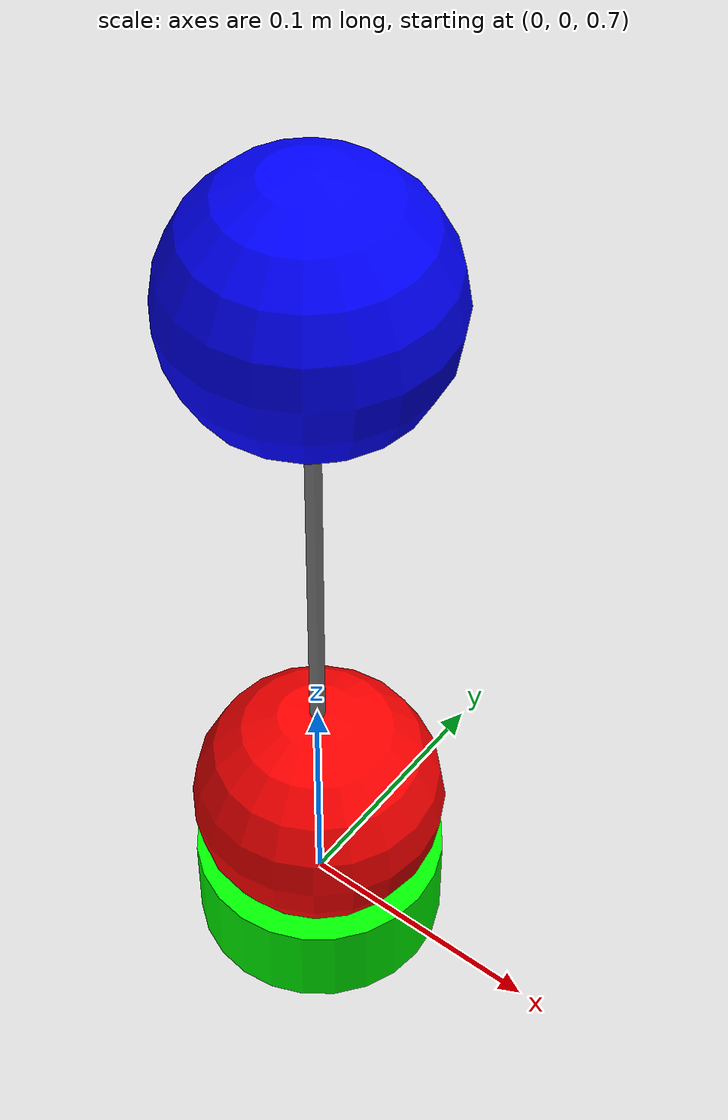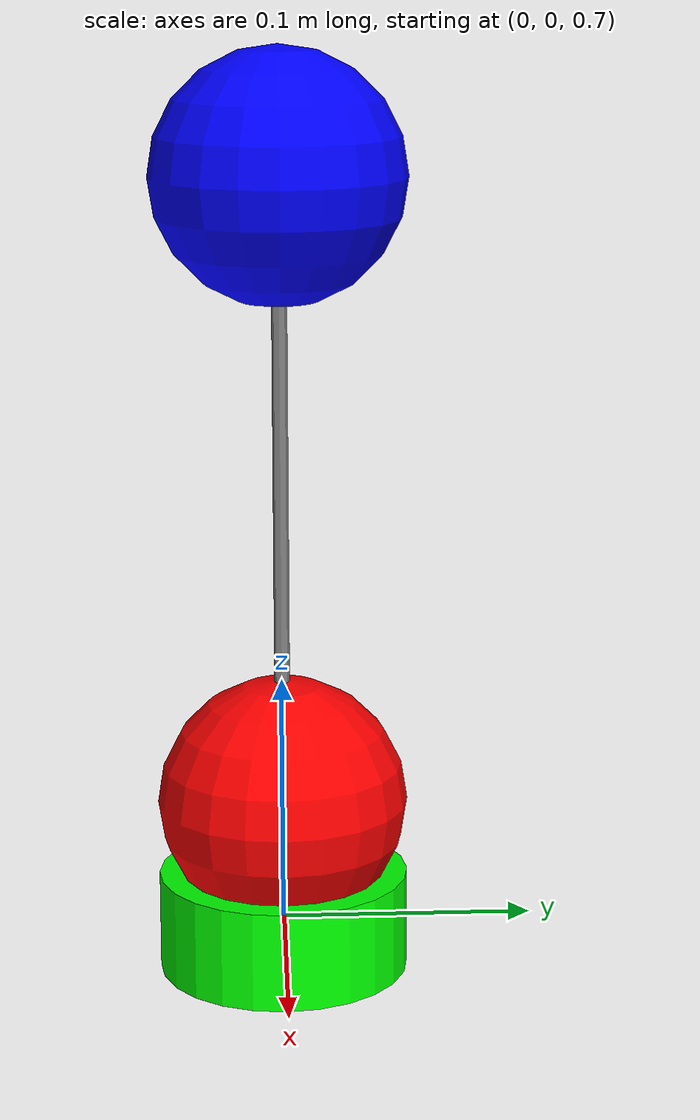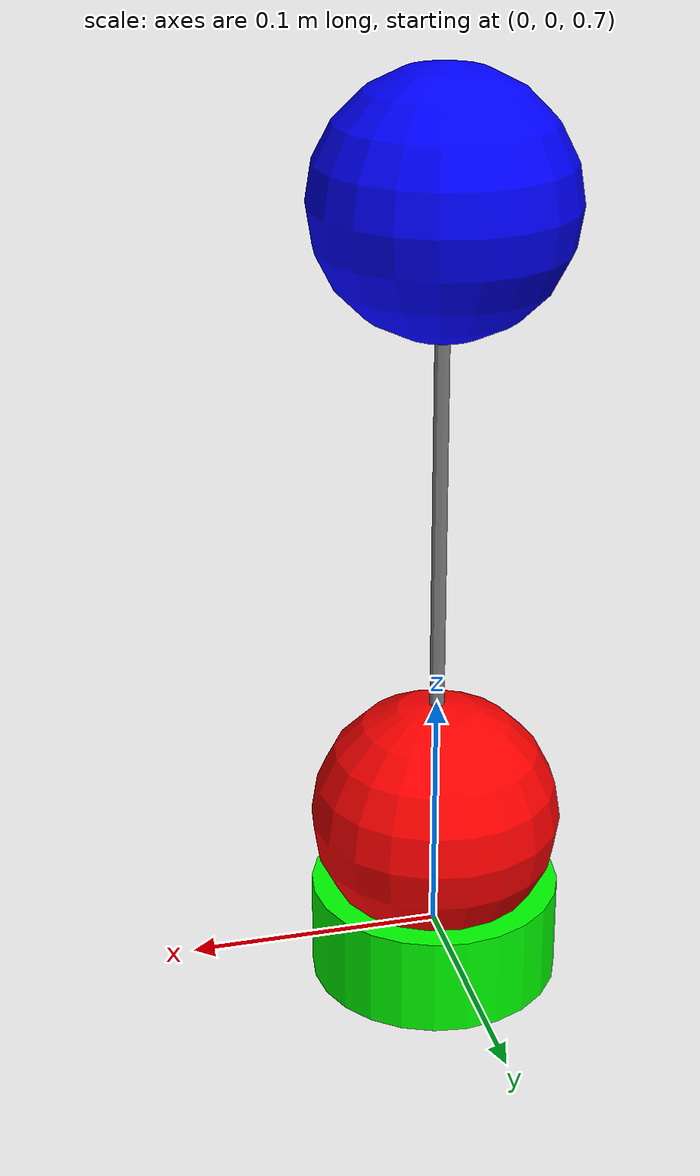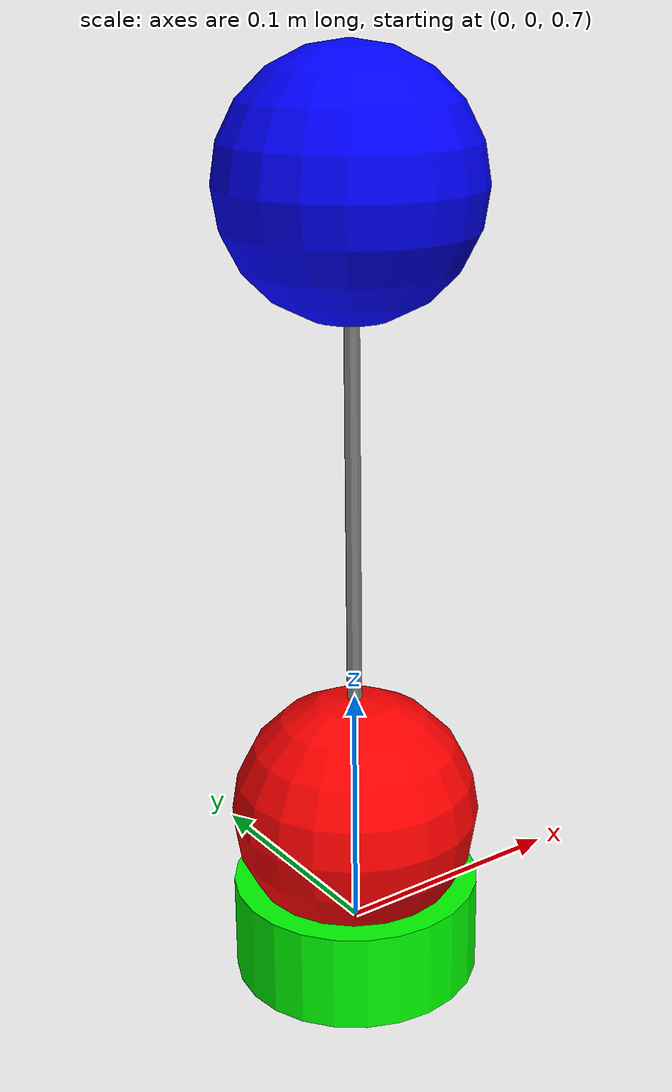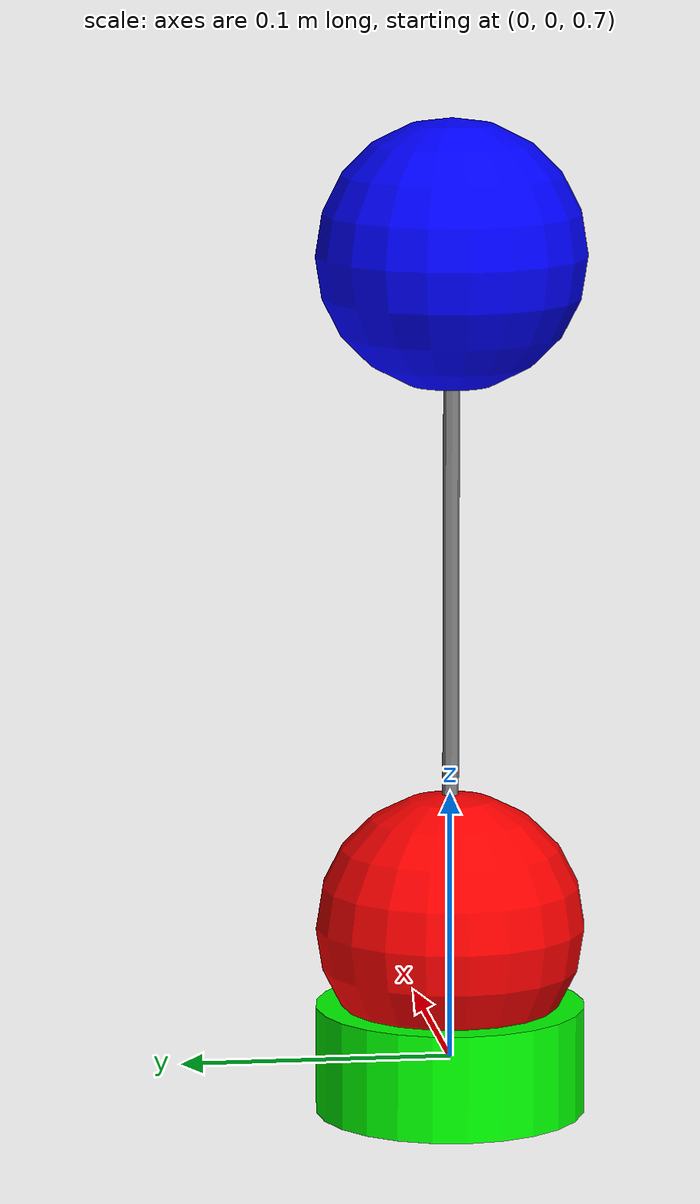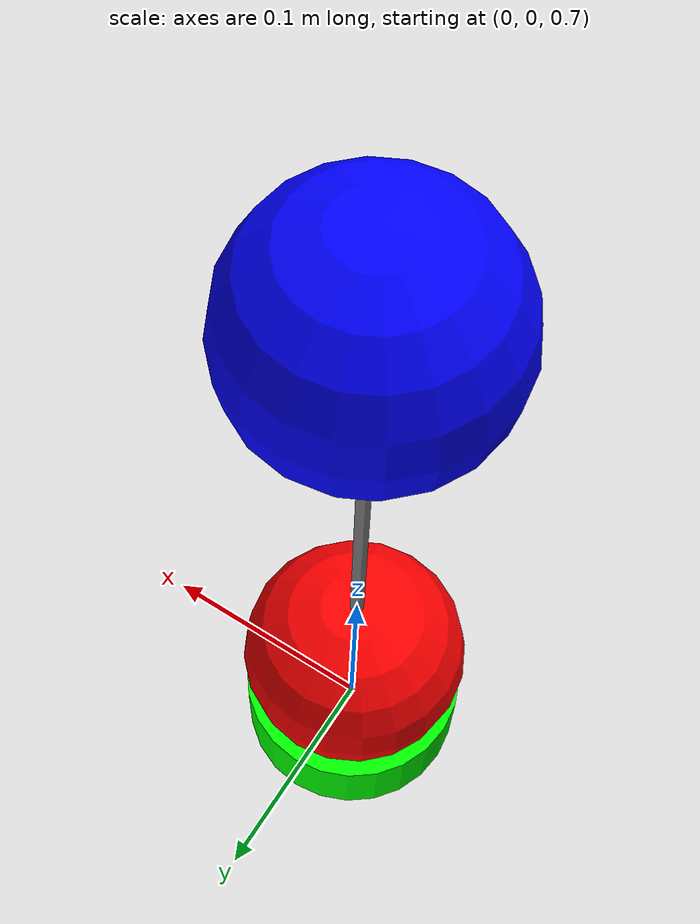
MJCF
<mujoco model="spring_scale">
    <compiler angle="radian"/>
    <option gravity="0 0 -9.81"/>  <!-- Standard gravity -->

    <worldbody>
        <!-- Ground Plane (with high friction to prevent rolling) -->
        <body name="ground" pos="0 0 0">
            <geom type="plane" size="2 2 0.1" rgba="0.7 0.7 0.7 1" friction="1 1 1"/>
        </body>

        <!-- Fixed anchor point -->
        <body name="anchor" pos="0 0 1">
            <geom type="sphere" size="0.05" rgba="0 0 1 1"/>  <!-- Blue anchor sphere -->
            <site name="anchor_site" pos="0 0 0"/>

            <!-- Moving platform (spring scale slider) -->
            <body name="slider" pos="0 0 -0.3">
                <joint name="slider_joint" type="slide" axis="0 0 1" damping="1"/>
                <geom type="cylinder" size="0.05 0.02" rgba="0 1 0 1"/>  <!-- Green slider -->
                <site name="slider_site" pos="0 0 0"/>

                <!-- Attach mass to slider so it moves together -->
                <body name="mass" pos="0 0 0.05">  <!-- Slightly above the slider surface -->
                    <geom name="test_mass" type="sphere" size="0.05" density="1000" rgba="1 0 0 1"/>
                </body>
            </body>
        </body>
    </worldbody>

    <!-- Tendons for the Spring Scale -->
    <tendon>
        <!-- Spring from anchor to slider -->
        <spatial name="spring1" range="0.3 0.7" stiffness="50" damping="2">
            <site site="anchor_site"/>
            <site site="slider_site"/>
        </spatial>
    </tendon>
</mujoco>
